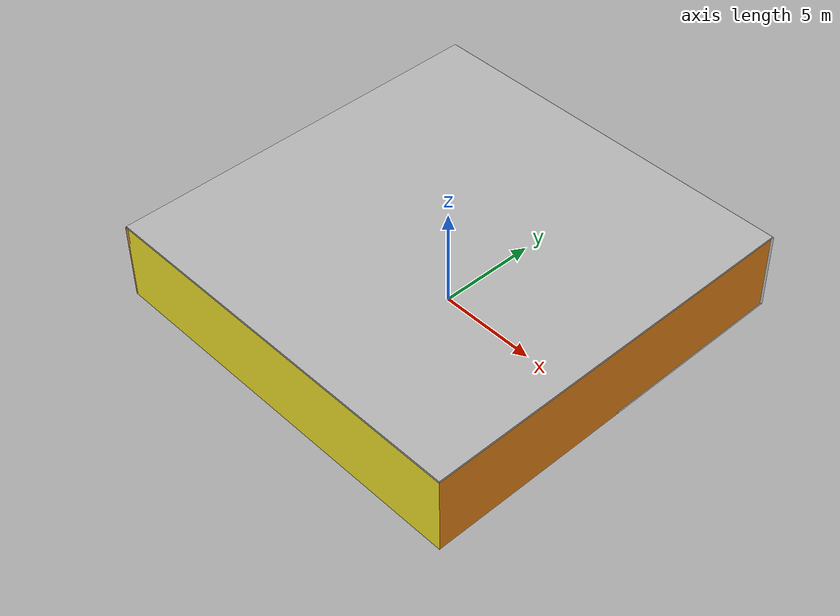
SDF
<sdf version="1.4">
 <world name="default">
  <physics type="ode">
   <max_step_size>0.001</max_step_size>
   <real_time_factor>1</real_time_factor>
   <real_time_update_rate>1000</real_time_update_rate>
   <gravity>0 0 -9.8</gravity>
  </physics>
  <scene><ambient>0.4 0.4 0.4 1</ambient><background>0.7 0.7 0.7 1</background><shadows>1</shadows></scene>
  <model name="Surrounding">
   <static>1</static>
   <link name="Ceiling">
    <collision name="Ceiling_Collision"><geometry><box><size>20 20 0.1</size></box></geometry></collision>
    <visual name="Ceiling_Visual">
     <geometry><box><size>20 20 0.1</size></box></geometry>
     <material>
      <script><uri>file://media/materials/scripts/gazebo.material</uri><name>Gazebo/Pioneer2Body</name></script>
     </material>
    </visual>
    <pose>0 0 4.05 0 0 0</pose>
   </link>
   <link name="Wall_South">
    <collision name="Wall_South_Collision">
     <geometry><box><size>20 0 4</size></box></geometry>
     <pose>0 0 2 0 -0 0</pose>
    </collision>
    <visual name="Wall_South_Visual">
     <pose>0 0 2 0 -0 0</pose>
     <geometry><box><size>20 0 4</size></box></geometry>
     <material>
      <script><uri>file://media/materials/scripts/gazebo.material</uri><name>Gazebo/YellowGlow</name></script>
     </material>
    </visual>
    <velocity_decay><linear>0</linear><angular>0</angular></velocity_decay>
    <pose>0 -10 0 0 -0 0</pose>
   </link>
   <link name="Wall_East">
    <collision name="Wall_21_Collision">
     <geometry><box><size>20 0 4</size></box></geometry>
     <pose>0 0 2 0 -0 0</pose>
    </collision>
    <visual name="Wall_21_Visual">
     <pose>0 0 2 0 -0 0</pose>
     <geometry><box><size>20 0 4</size></box></geometry>
     <material>
      <script><uri>file://media/materials/scripts/gazebo.material</uri><name>Gazebo/Orange</name></script>
     </material>
    </visual>
    <velocity_decay><linear>0</linear><angular>0</angular></velocity_decay>
    <pose>10 0 0 0 -0 1.5708</pose>
   </link>
   <link name="Wall_North">
    <collision name="Wall_22_Collision">
     <geometry><box><size>20 0.2 4</size></box></geometry>
     <pose>0 0 2 0 -0 0</pose>
    </collision>
    <visual name="Wall_22_Visual">
     <pose>0 0 2 0 -0 0</pose>
     <geometry><box><size>20 0.2 4</size></box></geometry>
     <material>
      <script><uri>file://media/materials/scripts/gazebo.material</uri><name>Gazebo/White</name></script>
     </material>
    </visual>
    <velocity_decay><linear>0</linear><angular>0</angular></velocity_decay>
    <pose>0 10 0 0 -0 0</pose>
   </link>
   <link name="Wall_West">
    <collision name="Wall_23_Collision">
     <geometry><box><size>20 0.2 4</size></box></geometry>
     <pose>0 0 2 0 -0 0</pose>
    </collision>
    <visual name="Wall_23_Visual">
     <pose>0 0 2 0 -0 0</pose>
     <geometry><box><size>20 0.2 4</size></box></geometry>
     <material>
      <script><uri>file://media/materials/scripts/gazebo.material</uri><name>Gazebo/WoodPallet</name></script>
     </material>
    </visual>
    <velocity_decay><linear>0</linear><angular>0</angular></velocity_decay>
    <pose>-10 0 0 0 0 -1.5708</pose>
   </link>
   <link name="Ground_link">
    <collision name="collision">
     <pose>0 0 .05 0 -0 0</pose>
     <geometry><box><size>20 20 0.1</size></box></geometry>
    </collision>
    <visual name="visual">
     <pose>0 0 .05 0 -0 0</pose>
     <geometry><box><size>20 20 0.1</size></box></geometry>
     <material>
      <script><uri>file://media/materials/scripts/gazebo.material</uri><name>Gazebo/White</name></script>
     </material>
    </visual>
   </link>
   <static>1</static>
  </model>
  <spherical_coordinates>
   <surface_model>EARTH_WGS84</surface_model>
   <latitude_deg>0</latitude_deg>
   <longitude_deg>0</longitude_deg>
   <elevation>0</elevation>
   <heading_deg>0</heading_deg>
  </spherical_coordinates>
  <light name="lightball_0" type="diffuse">
   <diffuse>0.8 0.8 0.8 1</diffuse>
   <specular>0.2 0.2 0.2 1</specular>
   <attenuation>
    <range>100</range>
    <constant>0.7</constant>
    <linear>0.01</linear>
    <quadratic>0.001</quadratic>
   </attenuation>
   <direction>-0.5 0.1 -0.9</direction>
   <pose>-3.49894547218 -1.58898191876 2.68414134863 0 0 0</pose>
  </light>
  <light name="lightball_1" type="diffuse">
   <diffuse>0.8 0.8 0.8 1</diffuse>
   <specular>0.2 0.2 0.2 1</specular>
   <attenuation>
    <range>100</range>
    <constant>0.7</constant>
    <linear>0.01</linear>
    <quadratic>0.001</quadratic>
   </attenuation>
   <direction>-0.5 0.1 -0.9</direction>
   <pose>-8.22352892986 -6.86051826452 0.58507632243 0 0 0</pose>
  </light>
  <light name="lightball_2" type="diffuse">
   <diffuse>0.8 0.8 0.8 1</diffuse>
   <specular>0.2 0.2 0.2 1</specular>
   <attenuation>
    <range>100</range>
    <constant>0.7</constant>
    <linear>0.01</linear>
    <quadratic>0.001</quadratic>
   </attenuation>
   <direction>-0.5 0.1 -0.9</direction>
   <pose>2.31069895931 -0.538532491916 1.02756466798 0 0 0</pose>
  </light>
  <light name="lightball_3" type="diffuse">
   <diffuse>0.8 0.8 0.8 1</diffuse>
   <specular>0.2 0.2 0.2 1</specular>
   <attenuation>
    <range>100</range>
    <constant>0.7</constant>
    <linear>0.01</linear>
    <quadratic>0.001</quadratic>
   </attenuation>
   <direction>-0.5 0.1 -0.9</direction>
   <pose>2.66524443218 -8.97315408018 3.0202560162 0 0 0</pose>
  </light>
  <light name="lightball_4" type="diffuse">
   <diffuse>0.8 0.8 0.8 1</diffuse>
   <specular>0.2 0.2 0.2 1</specular>
   <attenuation>
    <range>100</range>
    <constant>0.7</constant>
    <linear>0.01</linear>
    <quadratic>0.001</quadratic>
   </attenuation>
   <direction>-0.5 0.1 -0.9</direction>
   <pose>7.29928838578 -7.57529509345 3.3894901038 0 0 0</pose>
  </light>
  <light name="lightball_5" type="diffuse">
   <diffuse>0.8 0.8 0.8 1</diffuse>
   <specular>0.2 0.2 0.2 1</specular>
   <attenuation>
    <range>100</range>
    <constant>0.7</constant>
    <linear>0.01</linear>
    <quadratic>0.001</quadratic>
   </attenuation>
   <direction>-0.5 0.1 -0.9</direction>
   <pose>-0.986926805583 9.99692999014 1.54470361928 0 0 0</pose>
  </light>
  <light name="lightball_6" type="diffuse">
   <diffuse>0.8 0.8 0.8 1</diffuse>
   <specular>0.2 0.2 0.2 1</specular>
   <attenuation>
    <range>100</range>
    <constant>0.7</constant>
    <linear>0.01</linear>
    <quadratic>0.001</quadratic>
   </attenuation>
   <direction>-0.5 0.1 -0.9</direction>
   <pose>9.6231289818 1.17335207626 2.9700979179 0 0 0</pose>
  </light>
  <light name="lightball_7" type="diffuse">
   <diffuse>0.8 0.8 0.8 1</diffuse>
   <specular>0.2 0.2 0.2 1</specular>
   <attenuation>
    <range>100</range>
    <constant>0.7</constant>
    <linear>0.01</linear>
    <quadratic>0.001</quadratic>
   </attenuation>
   <direction>-0.5 0.1 -0.9</direction>
   <pose>3.73494181868 -3.53435650115 1.63238876271 0 0 0</pose>
  </light>
  <light name="lightball_8" type="diffuse">
   <diffuse>0.8 0.8 0.8 1</diffuse>
   <specular>0.2 0.2 0.2 1</specular>
   <attenuation>
    <range>100</range>
    <constant>0.7</constant>
    <linear>0.01</linear>
    <quadratic>0.001</quadratic>
   </attenuation>
   <direction>-0.5 0.1 -0.9</direction>
   <pose>-8.008183143 6.58431150953 0.826644107402 0 0 0</pose>
  </light>
  <light name="lightball_9" type="diffuse">
   <diffuse>0.8 0.8 0.8 1</diffuse>
   <specular>0.2 0.2 0.2 1</specular>
   <attenuation>
    <range>100</range>
    <constant>0.7</constant>
    <linear>0.01</linear>
    <quadratic>0.001</quadratic>
   </attenuation>
   <direction>-0.5 0.1 -0.9</direction>
   <pose>-2.34410133607 -5.75656554334 0.559144371358 0 0 0</pose>
  </light>
  <light name="lightball_10" type="diffuse">
   <diffuse>0.8 0.8 0.8 1</diffuse>
   <specular>0.2 0.2 0.2 1</specular>
   <attenuation>
    <range>100</range>
    <constant>0.7</constant>
    <linear>0.01</linear>
    <quadratic>0.001</quadratic>
   </attenuation>
   <direction>-0.5 0.1 -0.9</direction>
   <pose>3.59754074507 -9.11914313924 1.18878297538 0 0 0</pose>
  </light>
  <light name="lightball_11" type="diffuse">
   <diffuse>0.8 0.8 0.8 1</diffuse>
   <specular>0.2 0.2 0.2 1</specular>
   <attenuation>
    <range>100</range>
    <constant>0.7</constant>
    <linear>0.01</linear>
    <quadratic>0.001</quadratic>
   </attenuation>
   <direction>-0.5 0.1 -0.9</direction>
   <pose>-8.96090919822 -1.31865869399 3.58715712883 0 0 0</pose>
  </light>
  <include>
   <uri>model://construction_cone</uri>
   <pose>-8.41156945906 -3.85247437939 0 0 0 0.775184722779</pose>
  </include>
  <include>
   <uri>model://robocup_3Dsim_goal</uri>
   <pose>-3.41983783371 1.12646434449 0 0 0 3.10857596721</pose>
  </include>
  <include>
   <uri>model://robocup_3Dsim_goal</uri>
   <pose>2.21006945208 -2.67447983904 0 0 0 2.66171654734</pose>
  </include>
  <include><uri>model://table</uri><pose>5.15518884429 1.57636219856 0 0 0 0.61555485245</pose></include>
 </world>
</sdf>

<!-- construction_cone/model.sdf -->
<sdf version="1.5">
  <model name="Construction Cone">
    <link name="link">
      <collision name="collision">
        <geometry>
          <mesh>
            <scale>10 10 10</scale>
            <uri>file://isr-testbed/construction_cone/meshes/construction_cone.dae</uri>
          </mesh>
        </geometry>
      </collision>
      <visual name="visual">
        <geometry>
          <mesh>
            <scale>10 10 10</scale>
            <uri>file://isr-testbed/construction_cone/meshes/construction_cone.dae</uri>
          </mesh>
        </geometry>
      </visual>
    </link>
  </model>
</sdf>

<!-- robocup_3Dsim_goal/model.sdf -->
<sdf version="1.5">
  <model name="robocup_3d_goal">
    <static>true</static>
    <link name="left_post">
      <pose>0 1.05 0.45 0 0 0</pose>
      <collision name="collision">
        <geometry>
          <cylinder>
            <radius>0.05</radius>
            <length>0.9</length>
          </cylinder>
        </geometry>
      </collision>
      <visual name="visual">
        <geometry>
          <cylinder>
            <radius>0.05</radius>
            <length>0.9</length>
          </cylinder>
        </geometry>
        <material>
          <script>
            <uri>file://media/materials/scripts/gazebo.material</uri>
            <name>Gazebo/ZincYellow</name>
          </script>
        </material>
      </visual>
    </link>
    <link name="left_support_horiz_lower">
      <pose>0.30 1.05 0.01 0 0 0</pose>
      <collision name="collision">
        <geometry>
          <box>
            <size>0.50 0.02 0.02</size>
          </box>
        </geometry>
      </collision>
      <visual name="visual">
        <geometry>
          <box>
            <size>0.50 0.02 0.02</size>
          </box>
        </geometry>
        <material>
          <script>
            <uri>file://media/materials/scripts/gazebo.material</uri>
            <name>Gazebo/White</name>
          </script>
        </material>
      </visual>
    </link>
    <link name="left_support_horiz_upper">
      <pose>0.30 1.05 0.79 0 0 0</pose>
      <collision name="collision">
        <geometry>
          <box>
            <size>0.50 0.02 0.02</size>
          </box>
        </geometry>
      </collision>
      <visual name="visual">
        <geometry>
          <box>
            <size>0.50 0.02 0.02</size>
          </box>
        </geometry>
        <material>
          <script>
            <uri>file://media/materials/scripts/gazebo.material</uri>
            <name>Gazebo/White</name>
          </script>
        </material>
      </visual>
    </link>
    <link name="left_support_vertical">
      <pose>0.56 1.05 0.4 0 1.5708 0</pose>
      <collision name="collision">
        <geometry>
          <box>
            <size>0.80 0.02 0.02</size>
          </box>
        </geometry>
      </collision>
      <visual name="visual">
        <geometry>
          <box>
            <size>0.80 0.02 0.02</size>
          </box>
        </geometry>
        <material>
          <script>
            <uri>file://media/materials/scripts/gazebo.material</uri>
            <name>Gazebo/White</name>
          </script>
        </material>
      </visual>
    </link>
    <link name="right_support_horiz_lower">
      <pose>0.30 -1.05 0.01 0 0 0</pose>
      <collision name="collision">
        <geometry>
          <box>
            <size>0.50 0.02 0.02</size>
          </box>
        </geometry>
      </collision>
      <visual name="visual">
        <geometry>
          <box>
            <size>0.50 0.02 0.02</size>
          </box>
        </geometry>
        <material>
          <script>
            <uri>file://media/materials/scripts/gazebo.material</uri>
            <name>Gazebo/White</name>
          </script>
        </material>
      </visual>
    </link>
    <link name="right_support_horiz_upper">
      <pose>0.30 -1.05 0.79 0 0 0</pose>
      <collision name="collision">
        <geometry>
          <box>
            <size>0.50 0.02 0.02</size>
          </box>
        </geometry>
      </collision>
      <visual name="visual">
        <geometry>
          <box>
            <size>0.50 0.02 0.02</size>
          </box>
        </geometry>
        <material>
          <script>
            <uri>file://media/materials/scripts/gazebo.material</uri>
            <name>Gazebo/White</name>
          </script>
        </material>
      </visual>
    </link>
    <link name="right_support_vertical">
      <pose>0.56 -1.05 0.4 0 1.5708 0</pose>
      <collision name="collision">
        <geometry>
          <box>
            <size>0.80 0.02 0.02</size>
          </box>
        </geometry>
      </collision>
      <visual name="visual">
        <geometry>
          <box>
            <size>0.80 0.02 0.02</size>
          </box>
        </geometry>
        <material>
          <script>
            <uri>file://media/materials/scripts/gazebo.material</uri>
            <name>Gazebo/White</name>
          </script>
        </material>
      </visual>
    </link>
    <link name="center_support_horiz_lower">
      <pose>0.56 0 0.01 0 1.5708 0</pose>
      <collision name="collision">
        <geometry>
          <box>
            <size>0.02 2.08 0.02</size>
          </box>
        </geometry>
      </collision>
      <visual name="visual">
        <geometry>
          <box>
            <size>0.02 2.08 0.02</size>
          </box>
        </geometry>
        <material>
          <script>
            <uri>file://media/materials/scripts/gazebo.material</uri>
            <name>Gazebo/White</name>
          </script>
        </material>
      </visual>
    </link>
    <link name="center_support_horiz_upper">
      <pose>0.56 0 0.79 0 1.5708 0</pose>
      <collision name="collision">
        <geometry>
          <box>
            <size>0.02 2.08 0.02</size>
          </box>
        </geometry>
      </collision>
      <visual name="visual">
        <geometry>
          <box>
            <size>0.02 2.08 0.02</size>
          </box>
        </geometry>
        <material>
          <script>
            <uri>file://media/materials/scripts/gazebo.material</uri>
            <name>Gazebo/White</name>
          </script>
        </material>
      </visual>
    </link>
    <link name="right_post">
      <pose>0 -1.05 0.45 0 0 0</pose>
      <collision name="collision">
        <geometry>
          <cylinder>
            <radius>0.05</radius>
            <length>0.9</length>
          </cylinder>
        </geometry>
      </collision>
      <visual name="visual">
        <geometry>
          <cylinder>
            <radius>0.05</radius>
            <length>0.9</length>
          </cylinder>
        </geometry>
        <material>
          <script>
            <uri>file://media/materials/scripts/gazebo.material</uri>
            <name>Gazebo/ZincYellow</name>
          </script>
        </material>
      </visual>
    </link>
    <link name="crossbar">
      <pose>0 0 0.85 1.57 1.57 0</pose>
      <collision name="collision">
        <geometry>
          <cylinder>
            <radius>0.05</radius>
            <length>2.0</length>
          </cylinder>
        </geometry>
      </collision>
      <visual name="visual">
        <geometry>
          <cylinder>
            <radius>0.05</radius>
            <length>2.0</length>
          </cylinder>
        </geometry>
        <material>
          <script>
            <uri>file://media/materials/scripts/gazebo.material</uri>
            <name>Gazebo/ZincYellow</name>
          </script>
        </material>
      </visual>
    </link>
    <link name="center_net">
      <pose>0.56 0 0.40 0 0 0</pose>
      <collision name="collision">
        <geometry>
          <box>
            <size>0.01 2.1 0.80</size>
          </box>
        </geometry>
      </collision>
      <visual name="visual">
        <geometry>
          <box>
            <size>0.01 2.1 0.80</size>
          </box>
        </geometry>
        <material>
          <script>
            <uri>model://../model_source/models/robocup09_spl_field/materials/scripts/</uri>
            <uri>model://../model_source/models/robocup09_spl_field/materials/textures/</uri>
            <name>RoboCup/Net</name>
          </script>
        </material>
      </visual>
    </link>
    <link name="left_net">
      <pose>0.30 1.05 0.40 0 0 0</pose>
      <collision name="collision">
        <geometry>
          <box>
            <size>0.50 0.01 0.76</size>
          </box>
        </geometry>
      </collision>
      <visual name="visual">
        <geometry>
          <box>
            <size>0.50 0.01 0.76</size>
          </box>
        </geometry>
        <material>
          <script>
            <uri>model://../model_source/models/robocup09_spl_field/materials/scripts/</uri>
            <uri>model://../model_source/models/robocup09_spl_field/materials/textures/</uri>
            <name>RoboCup/Net</name>
          </script>
        </material>
      </visual>
    </link>
    <link name="right_net">
      <pose>0.30 -1.05 0.40 0 0 0</pose>
      <collision name="collision">
        <geometry>
          <box>
            <size>0.50 0.01 0.76</size>
          </box>
        </geometry>
      </collision>
      <visual name="visual">
        <geometry>
          <box>
            <size>0.50 0.01 0.76</size>
          </box>
        </geometry>
        <material>
          <script>
            <uri>model://../model_source/models/robocup09_spl_field/materials/scripts/</uri>
            <uri>model://../model_source/models/robocup09_spl_field/materials/textures/</uri>
            <name>RoboCup/Net</name>
          </script>
        </material>
      </visual>
    </link>
  </model>
</sdf>

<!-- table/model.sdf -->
<sdf version="1.5">
  <model name="table">
    <static>true</static>
    <link name="link">
      <collision name="surface">
        <pose>0 0 1.0 0 0 0</pose>
        <geometry>
          <box>
            <size>1.5 0.8 0.03</size>
          </box>
        </geometry>
        <surface>
          <friction>
            <ode>
              <mu>0.6</mu>
              <mu2>0.6</mu2>
            </ode>
          </friction>
        </surface>
      </collision>
      <visual name="visual1">
        <pose>0 0 1.0 0 0 0</pose>
        <geometry>
          <box>
            <size>1.5 0.8 0.03</size>
          </box>
        </geometry>
        <material>
          <script>
            <uri>model://media/materials/scripts/gazebo.material</uri>
            <name>Gazebo/Wood</name>
          </script>
        </material>
      </visual>
      <collision name="front_left_leg">
        <pose>0.68 0.38 0.5 0 0 0</pose>
        <geometry>
          <cylinder>
            <radius>0.02</radius>
            <length>1.0</length>
          </cylinder>
        </geometry>
      </collision>
      <visual name="front_left_leg">
        <pose>0.68 0.38 0.5 0 0 0</pose>
        <geometry>
          <cylinder>
            <radius>0.02</radius>
            <length>1.0</length>
          </cylinder>
        </geometry>
        <material>
          <script>
            <uri>model://media/materials/scripts/gazebo.material</uri>
            <name>Gazebo/Grey</name>
          </script>
        </material>
      </visual>
      <collision name="front_right_leg">
        <pose>0.68 -0.38 0.5 0 0 0</pose>
        <geometry>
          <cylinder>
            <radius>0.02</radius>
            <length>1.0</length>
          </cylinder>
        </geometry>
      </collision>
      <visual name="front_right_leg">
        <pose>0.68 -0.38 0.5 0 0 0</pose>
        <geometry>
          <cylinder>
            <radius>0.02</radius>
            <length>1.0</length>
          </cylinder>
        </geometry>
        <material>
          <script>
            <uri>model://media/materials/scripts/gazebo.material</uri>
            <name>Gazebo/Grey</name>
          </script>
        </material>
      </visual>
      <collision name="back_right_leg">
        <pose>-0.68 -0.38 0.5 0 0 0</pose>
        <geometry>
          <cylinder>
            <radius>0.02</radius>
            <length>1.0</length>
          </cylinder>
        </geometry>
      </collision>
      <visual name="back_right_leg">
        <pose>-0.68 -0.38 0.5 0 0 0</pose>
        <geometry>
          <cylinder>
            <radius>0.02</radius>
            <length>1.0</length>
          </cylinder>
        </geometry>
        <material>
          <script>
            <uri>model://media/materials/scripts/gazebo.material</uri>
            <name>Gazebo/Grey</name>
          </script>
        </material>
      </visual>
      <collision name="back_left_leg">
        <pose>-0.68 0.38 0.5 0 0 0</pose>
        <geometry>
          <cylinder>
            <radius>0.02</radius>
            <length>1.0</length>
          </cylinder>
        </geometry>
      </collision>
      <visual name="back_left_leg">
        <pose>-0.68 0.38 0.5 0 0 0</pose>
        <geometry>
          <cylinder>
            <radius>0.02</radius>
            <length>1.0</length>
          </cylinder>
        </geometry>
        <material>
          <script>
            <uri>model://media/materials/scripts/gazebo.material</uri>
            <name>Gazebo/Grey</name>
          </script>
        </material>
      </visual>
    </link>
  </model>
</sdf>
